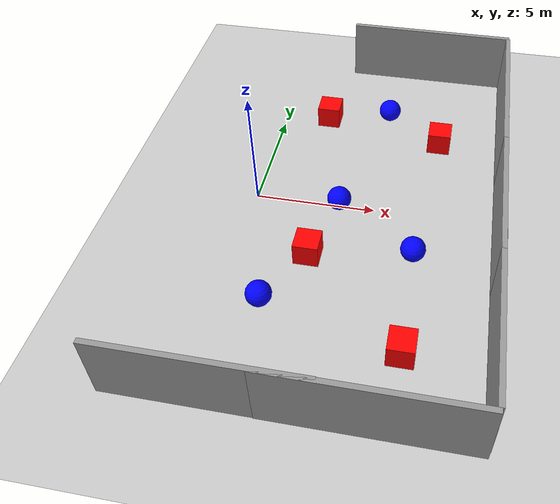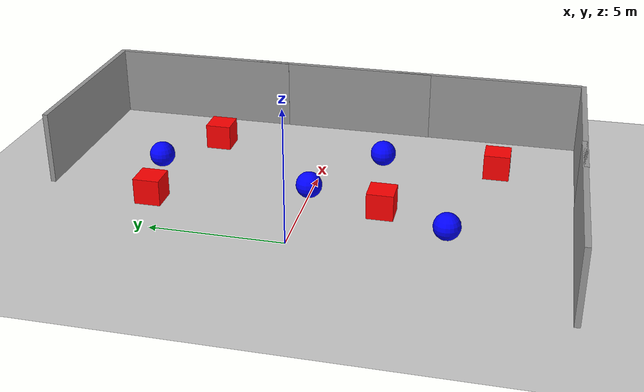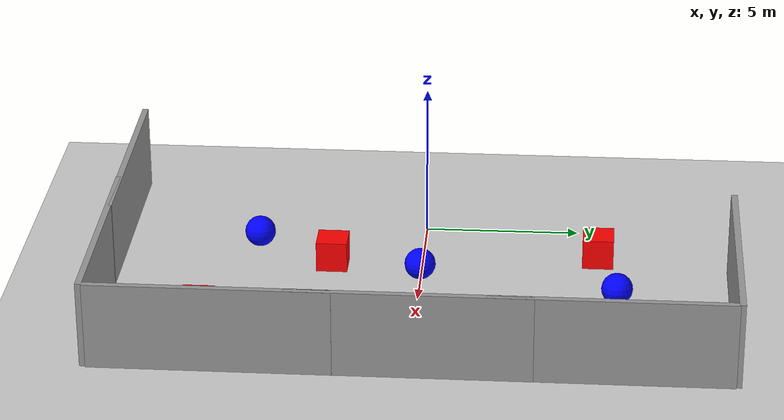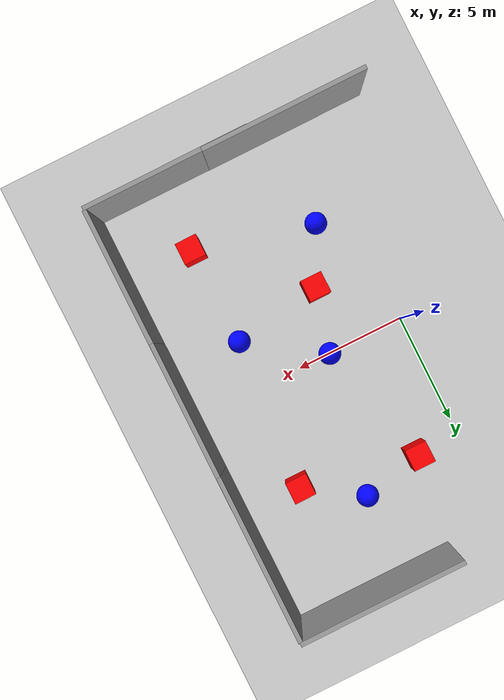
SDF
<sdf version="1.6">
 <world name="default">
  <model name="ground_plane">
   <static>1</static>
   <link name="link">
    <collision name="collision">
     <geometry><plane><normal>0 0 1</normal><size>100 100</size></plane></geometry>
     <surface>
      <contact><collide_bitmask>65535</collide_bitmask></contact>
      <friction><ode><mu>100</mu><mu2>50</mu2></ode></friction>
     </surface>
    </collision>
    <visual name="visual">
     <cast_shadows>0</cast_shadows>
     <geometry><plane><normal>0 0 1</normal><size>100 100</size></plane></geometry>
     <material>
      <script><uri>file://media/materials/scripts/gazebo.material</uri><name>Gazebo/Grey</name></script>
     </material>
    </visual>
   </link>
  </model>
  <model name="grey_wall">
   <static>1</static>
   <link name="link">
    <pose>0 0 1.4 0 -0 0</pose>
    <collision name="collision"><geometry><box><size>7.5 0.2 2.8</size></box></geometry></collision>
    <visual name="visual">
     <cast_shadows>0</cast_shadows>
     <geometry><box><size>7.5 0.2 2.8</size></box></geometry>
     <material>
      <script>
       <uri>model://grey_wall/materials/scripts</uri>
       <uri>model://grey_wall/materials/textures</uri>
       <name>vrc/grey_wall</name>
      </script>
     </material>
    </visual>
   </link>
   <pose>6.30479 9.96126 0 0 -0 0</pose>
  </model>
  <model name="grey_wall_3">
   <static>1</static>
   <link name="link">
    <pose>0 0 1.4 0 -0 0</pose>
    <collision name="collision"><geometry><box><size>7.5 0.2 2.8</size></box></geometry></collision>
    <visual name="visual">
     <cast_shadows>0</cast_shadows>
     <geometry><box><size>7.5 0.2 2.8</size></box></geometry>
     <material>
      <script>
       <uri>model://grey_wall/materials/scripts</uri>
       <uri>model://grey_wall/materials/textures</uri>
       <name>vrc/grey_wall</name>
      </script>
     </material>
    </visual>
   </link>
   <pose>0.892909 -9.82275 0 0 -0 0</pose>
  </model>
  <model name="grey_wall_4">
   <static>1</static>
   <link name="link">
    <pose>0 0 1.4 0 -0 0</pose>
    <collision name="collision"><geometry><box><size>7.5 0.2 2.8</size></box></geometry></collision>
    <visual name="visual">
     <cast_shadows>0</cast_shadows>
     <geometry><box><size>7.5 0.2 2.8</size></box></geometry>
     <material>
      <script>
       <uri>model://grey_wall/materials/scripts</uri>
       <uri>model://grey_wall/materials/textures</uri>
       <name>vrc/grey_wall</name>
      </script>
     </material>
    </visual>
   </link>
   <pose>6.28475 -9.83983 0 0 -0 0</pose>
  </model>
  <model name="grey_wall_5_90_rotated">
   <link name="link">
    <pose>0 0 1.4 0 -0 0</pose>
    <visual name="visual">
     <cast_shadows>0</cast_shadows>
     <geometry><box><size>7.5 0.2 2.8</size></box></geometry>
     <material>
      <script>
       <uri>model://grey_wall/materials/scripts</uri>
       <uri>model://grey_wall/materials/textures</uri>
       <name>vrc/grey_wall</name>
      </script>
     </material>
    </visual>
    <collision name="collision">
     <geometry><box><size>7.5 0.2 2.8</size></box></geometry>
     <surface>
      <friction>
       <ode><mu>1</mu><mu2>1</mu2><fdir1>0 0 0</fdir1><slip1>0</slip1><slip2>0</slip2></ode>
       <torsional>
        <coefficient>1</coefficient>
        <patch_radius>0</patch_radius>
        <surface_radius>0</surface_radius>
        <use_patch_radius>1</use_patch_radius>
        <ode><slip>0</slip></ode>
       </torsional>
      </friction>
      <bounce><restitution_coefficient>0</restitution_coefficient><threshold>1e+06</threshold></bounce>
      <contact>
       <collide_without_contact>0</collide_without_contact>
       <collide_without_contact_bitmask>1</collide_without_contact_bitmask>
       <collide_bitmask>1</collide_bitmask>
       <ode>
        <soft_cfm>0</soft_cfm>
        <soft_erp>0.2</soft_erp>
        <kp>1e+13</kp>
        <kd>1</kd>
        <max_vel>0.01</max_vel>
        <min_depth>0</min_depth>
       </ode>
       <bullet>
        <split_impulse>1</split_impulse>
        <split_impulse_penetration_threshold>-0.01</split_impulse_penetration_threshold>
        <soft_cfm>0</soft_cfm>
        <soft_erp>0.2</soft_erp>
        <kp>1e+13</kp>
        <kd>1</kd>
       </bullet>
      </contact>
     </surface>
    </collision>
   </link>
   <static>1</static>
   <pose>10 6.15 0 0 -0 1.57</pose>
  </model>
  <model name="grey_wall_5_90_rotated_0">
   <link name="link">
    <pose>0 0 1.4 0 -0 0</pose>
    <visual name="visual">
     <cast_shadows>0</cast_shadows>
     <geometry><box><size>7.5 0.2 2.8</size></box></geometry>
     <material>
      <script>
       <uri>model://grey_wall/materials/scripts</uri>
       <uri>model://grey_wall/materials/textures</uri>
       <name>vrc/grey_wall</name>
      </script>
     </material>
    </visual>
    <collision name="collision">
     <geometry><box><size>7.5 0.2 2.8</size></box></geometry>
     <surface>
      <friction>
       <ode><mu>1</mu><mu2>1</mu2><fdir1>0 0 0</fdir1><slip1>0</slip1><slip2>0</slip2></ode>
       <torsional>
        <coefficient>1</coefficient>
        <patch_radius>0</patch_radius>
        <surface_radius>0</surface_radius>
        <use_patch_radius>1</use_patch_radius>
        <ode><slip>0</slip></ode>
       </torsional>
      </friction>
      <bounce><restitution_coefficient>0</restitution_coefficient><threshold>1e+06</threshold></bounce>
      <contact>
       <collide_without_contact>0</collide_without_contact>
       <collide_without_contact_bitmask>1</collide_without_contact_bitmask>
       <collide_bitmask>1</collide_bitmask>
       <ode>
        <soft_cfm>0</soft_cfm>
        <soft_erp>0.2</soft_erp>
        <kp>1e+13</kp>
        <kd>1</kd>
        <max_vel>0.01</max_vel>
        <min_depth>0</min_depth>
       </ode>
       <bullet>
        <split_impulse>1</split_impulse>
        <split_impulse_penetration_threshold>-0.01</split_impulse_penetration_threshold>
        <soft_cfm>0</soft_cfm>
        <soft_erp>0.2</soft_erp>
        <kp>1e+13</kp>
        <kd>1</kd>
       </bullet>
      </contact>
     </surface>
    </collision>
   </link>
   <static>1</static>
   <pose>10 0.069107 0 0 -0 1.57</pose>
  </model>
  <model name="grey_wall_5_90_rotated_1">
   <link name="link">
    <pose>0 0 1.4 0 -0 0</pose>
    <visual name="visual">
     <cast_shadows>0</cast_shadows>
     <geometry><box><size>7.5 0.2 2.8</size></box></geometry>
     <material>
      <script>
       <uri>model://grey_wall/materials/scripts</uri>
       <uri>model://grey_wall/materials/textures</uri>
       <name>vrc/grey_wall</name>
      </script>
     </material>
    </visual>
    <collision name="collision">
     <geometry><box><size>7.5 0.2 2.8</size></box></geometry>
     <surface>
      <friction>
       <ode><mu>1</mu><mu2>1</mu2><fdir1>0 0 0</fdir1><slip1>0</slip1><slip2>0</slip2></ode>
       <torsional>
        <coefficient>1</coefficient>
        <patch_radius>0</patch_radius>
        <surface_radius>0</surface_radius>
        <use_patch_radius>1</use_patch_radius>
        <ode><slip>0</slip></ode>
       </torsional>
      </friction>
      <bounce><restitution_coefficient>0</restitution_coefficient><threshold>1e+06</threshold></bounce>
      <contact>
       <collide_without_contact>0</collide_without_contact>
       <collide_without_contact_bitmask>1</collide_without_contact_bitmask>
       <collide_bitmask>1</collide_bitmask>
       <ode>
        <soft_cfm>0</soft_cfm>
        <soft_erp>0.2</soft_erp>
        <kp>1e+13</kp>
        <kd>1</kd>
        <max_vel>0.01</max_vel>
        <min_depth>0</min_depth>
       </ode>
       <bullet>
        <split_impulse>1</split_impulse>
        <split_impulse_penetration_threshold>-0.01</split_impulse_penetration_threshold>
        <soft_cfm>0</soft_cfm>
        <soft_erp>0.2</soft_erp>
        <kp>1e+13</kp>
        <kd>1</kd>
       </bullet>
      </contact>
     </surface>
    </collision>
   </link>
   <static>1</static>
   <pose>10 -6 0 0 -0 1.57</pose>
  </model>
  <model name="unit_sphere_blue">
   <link name="link_2">
    <inertial>
     <mass>1</mass>
     <inertia><ixx>0.1</ixx><ixy>0</ixy><ixz>0</ixz><iyy>0.1</iyy><iyz>0</iyz><izz>0.1</izz></inertia>
    </inertial>
    <pose>-0.012036 0.119402 0 0 -0 0</pose>
    <visual name="visual">
     <geometry><sphere><radius>0.5</radius></sphere></geometry>
     <material>
      <lighting>1</lighting>
      <script><uri>file://media/materials/scripts/gazebo.material</uri><name>Gazebo/Grey</name></script>
      <ambient>0 0 1 0</ambient>
      <shader type="vertex"><normal_map>__default__</normal_map></shader>
      <diffuse>0.7 0.7 0.7 1</diffuse>
      <specular>0.01 0.01 0.01 1</specular>
      <emissive>0 0 0 1</emissive>
     </material>
    </visual>
    <collision name="collision">
     <geometry><sphere><radius>0.5</radius></sphere></geometry>
     <surface>
      <friction>
       <ode><mu>1</mu><mu2>1</mu2><fdir1>0 0 0</fdir1><slip1>0</slip1><slip2>0</slip2></ode>
       <torsional>
        <coefficient>1</coefficient>
        <patch_radius>0</patch_radius>
        <surface_radius>0</surface_radius>
        <use_patch_radius>1</use_patch_radius>
        <ode><slip>0</slip></ode>
       </torsional>
      </friction>
      <bounce><restitution_coefficient>0</restitution_coefficient><threshold>1e+06</threshold></bounce>
      <contact>
       <collide_without_contact>0</collide_without_contact>
       <collide_without_contact_bitmask>1</collide_without_contact_bitmask>
       <collide_bitmask>1</collide_bitmask>
       <ode>
        <soft_cfm>0</soft_cfm>
        <soft_erp>0.2</soft_erp>
        <kp>1e+13</kp>
        <kd>1</kd>
        <max_vel>0.01</max_vel>
        <min_depth>0</min_depth>
       </ode>
       <bullet>
        <split_impulse>1</split_impulse>
        <split_impulse_penetration_threshold>-0.01</split_impulse_penetration_threshold>
        <soft_cfm>0</soft_cfm>
        <soft_erp>0.2</soft_erp>
        <kp>1e+13</kp>
        <kd>1</kd>
       </bullet>
      </contact>
     </surface>
    </collision>
   </link>
   <static>0</static>
   <pose>3.54195 -0.13072 0.5 0 -0 0</pose>
  </model>
  <model name="unit_sphere_blue_0">
   <link name="link_2">
    <inertial>
     <mass>1</mass>
     <inertia><ixx>0.1</ixx><ixy>0</ixy><ixz>0</ixz><iyy>0.1</iyy><iyz>0</iyz><izz>0.1</izz></inertia>
    </inertial>
    <pose>-0.012036 0.119402 0 0 -0 0</pose>
    <visual name="visual">
     <geometry><sphere><radius>0.5</radius></sphere></geometry>
     <material>
      <lighting>1</lighting>
      <script><uri>file://media/materials/scripts/gazebo.material</uri><name>Gazebo/Grey</name></script>
      <ambient>0 0 1 0</ambient>
      <shader type="vertex"><normal_map>__default__</normal_map></shader>
      <diffuse>0.7 0.7 0.7 1</diffuse>
      <specular>0.01 0.01 0.01 1</specular>
      <emissive>0 0 0 1</emissive>
     </material>
    </visual>
    <collision name="collision">
     <geometry><sphere><radius>0.5</radius></sphere></geometry>
     <surface>
      <friction>
       <ode><mu>1</mu><mu2>1</mu2><fdir1>0 0 0</fdir1><slip1>0</slip1><slip2>0</slip2></ode>
       <torsional>
        <coefficient>1</coefficient>
        <patch_radius>0</patch_radius>
        <surface_radius>0</surface_radius>
        <use_patch_radius>1</use_patch_radius>
        <ode><slip>0</slip></ode>
       </torsional>
      </friction>
      <bounce><restitution_coefficient>0</restitution_coefficient><threshold>1e+06</threshold></bounce>
      <contact>
       <collide_without_contact>0</collide_without_contact>
       <collide_without_contact_bitmask>1</collide_without_contact_bitmask>
       <collide_bitmask>1</collide_bitmask>
       <ode>
        <soft_cfm>0</soft_cfm>
        <soft_erp>0.2</soft_erp>
        <kp>1e+13</kp>
        <kd>1</kd>
        <max_vel>0.01</max_vel>
        <min_depth>0</min_depth>
       </ode>
       <bullet>
        <split_impulse>1</split_impulse>
        <split_impulse_penetration_threshold>-0.01</split_impulse_penetration_threshold>
        <soft_cfm>0</soft_cfm>
        <soft_erp>0.2</soft_erp>
        <kp>1e+13</kp>
        <kd>1</kd>
       </bullet>
      </contact>
     </surface>
    </collision>
   </link>
   <static>0</static>
   <pose>4.85635 6.1928 0.5 0 -0 0</pose>
  </model>
  <model name="unit_sphere_blue_3">
   <link name="link_2">
    <inertial>
     <mass>1</mass>
     <inertia><ixx>0.1</ixx><ixy>0</ixy><ixz>0</ixz><iyy>0.1</iyy><iyz>0</iyz><izz>0.1</izz></inertia>
    </inertial>
    <pose>-0.012036 0.119402 0 0 -0 0</pose>
    <visual name="visual">
     <geometry><sphere><radius>0.5</radius></sphere></geometry>
     <material>
      <lighting>1</lighting>
      <script><uri>file://media/materials/scripts/gazebo.material</uri><name>Gazebo/Grey</name></script>
      <ambient>0 0 1 0</ambient>
      <shader type="vertex"><normal_map>__default__</normal_map></shader>
      <diffuse>0.7 0.7 0.7 1</diffuse>
      <specular>0.01 0.01 0.01 1</specular>
      <emissive>0 0 0 1</emissive>
     </material>
    </visual>
    <collision name="collision">
     <geometry><sphere><radius>0.5</radius></sphere></geometry>
     <surface>
      <friction>
       <ode><mu>1</mu><mu2>1</mu2><fdir1>0 0 0</fdir1><slip1>0</slip1><slip2>0</slip2></ode>
       <torsional>
        <coefficient>1</coefficient>
        <patch_radius>0</patch_radius>
        <surface_radius>0</surface_radius>
        <use_patch_radius>1</use_patch_radius>
        <ode><slip>0</slip></ode>
       </torsional>
      </friction>
      <bounce><restitution_coefficient>0</restitution_coefficient><threshold>1e+06</threshold></bounce>
      <contact>
       <collide_without_contact>0</collide_without_contact>
       <collide_without_contact_bitmask>1</collide_without_contact_bitmask>
       <collide_bitmask>1</collide_bitmask>
       <ode>
        <soft_cfm>0</soft_cfm>
        <soft_erp>0.2</soft_erp>
        <kp>1e+13</kp>
        <kd>1</kd>
        <max_vel>0.01</max_vel>
        <min_depth>0</min_depth>
       </ode>
       <bullet>
        <split_impulse>1</split_impulse>
        <split_impulse_penetration_threshold>-0.01</split_impulse_penetration_threshold>
        <soft_cfm>0</soft_cfm>
        <soft_erp>0.2</soft_erp>
        <kp>1e+13</kp>
        <kd>1</kd>
       </bullet>
      </contact>
     </surface>
    </collision>
   </link>
   <static>0</static>
   <pose>1.53481 -5.52579 0.5 0 -0 0</pose>
  </model>
  <model name="unit_box_red_0">
   <link name="link">
    <inertial>
     <mass>1</mass>
     <inertia>
      <ixx>0.166667</ixx>
      <ixy>0</ixy>
      <ixz>0</ixz>
      <iyy>0.166667</iyy>
      <iyz>0</iyz>
      <izz>0.166667</izz>
     </inertia>
    </inertial>
    <visual name="visual">
     <geometry><box><size>1 1 1</size></box></geometry>
     <material>
      <script><name>Gazebo/Grey</name><uri>file://media/materials/scripts/gazebo.material</uri></script>
      <ambient>1 0 0 0</ambient>
      <shader type="vertex"><normal_map>__default__</normal_map></shader>
      <diffuse>0.7 0.7 0.7 1</diffuse>
      <specular>0.01 0.01 0.01 1</specular>
      <emissive>0 0 0 1</emissive>
     </material>
    </visual>
    <collision name="collision">
     <geometry><box><size>1 1 1</size></box></geometry>
     <surface>
      <friction>
       <ode><mu>1</mu><mu2>1</mu2><fdir1>0 0 0</fdir1><slip1>0</slip1><slip2>0</slip2></ode>
       <torsional>
        <coefficient>1</coefficient>
        <patch_radius>0</patch_radius>
        <surface_radius>0</surface_radius>
        <use_patch_radius>1</use_patch_radius>
        <ode><slip>0</slip></ode>
       </torsional>
      </friction>
      <bounce><restitution_coefficient>0</restitution_coefficient><threshold>1e+06</threshold></bounce>
      <contact>
       <collide_without_contact>0</collide_without_contact>
       <collide_without_contact_bitmask>1</collide_without_contact_bitmask>
       <collide_bitmask>1</collide_bitmask>
       <ode>
        <soft_cfm>0</soft_cfm>
        <soft_erp>0.2</soft_erp>
        <kp>1e+13</kp>
        <kd>1</kd>
        <max_vel>0.01</max_vel>
        <min_depth>0</min_depth>
       </ode>
       <bullet>
        <split_impulse>1</split_impulse>
        <split_impulse_penetration_threshold>-0.01</split_impulse_penetration_threshold>
        <soft_cfm>0</soft_cfm>
        <soft_erp>0.2</soft_erp>
        <kp>1e+13</kp>
        <kd>1</kd>
       </bullet>
      </contact>
     </surface>
    </collision>
   </link>
   <static>0</static>
   <pose>2.06121 5.68775 0.5 0 -0 0</pose>
  </model>
  <model name="unit_box_red_1">
   <link name="link">
    <inertial>
     <mass>1</mass>
     <inertia>
      <ixx>0.166667</ixx>
      <ixy>0</ixy>
      <ixz>0</ixz>
      <iyy>0.166667</iyy>
      <iyz>0</iyz>
      <izz>0.166667</izz>
     </inertia>
    </inertial>
    <visual name="visual">
     <geometry><box><size>1 1 1</size></box></geometry>
     <material>
      <script><name>Gazebo/Grey</name><uri>file://media/materials/scripts/gazebo.material</uri></script>
      <ambient>1 0 0 0</ambient>
      <shader type="vertex"><normal_map>__default__</normal_map></shader>
      <diffuse>0.7 0.7 0.7 1</diffuse>
      <specular>0.01 0.01 0.01 1</specular>
      <emissive>0 0 0 1</emissive>
     </material>
    </visual>
    <collision name="collision">
     <geometry><box><size>1 1 1</size></box></geometry>
     <surface>
      <friction>
       <ode><mu>1</mu><mu2>1</mu2><fdir1>0 0 0</fdir1><slip1>0</slip1><slip2>0</slip2></ode>
       <torsional>
        <coefficient>1</coefficient>
        <patch_radius>0</patch_radius>
        <surface_radius>0</surface_radius>
        <use_patch_radius>1</use_patch_radius>
        <ode><slip>0</slip></ode>
       </torsional>
      </friction>
      <bounce><restitution_coefficient>0</restitution_coefficient><threshold>1e+06</threshold></bounce>
      <contact>
       <collide_without_contact>0</collide_without_contact>
       <collide_without_contact_bitmask>1</collide_without_contact_bitmask>
       <collide_bitmask>1</collide_bitmask>
       <ode>
        <soft_cfm>0</soft_cfm>
        <soft_erp>0.2</soft_erp>
        <kp>1e+13</kp>
        <kd>1</kd>
        <max_vel>0.01</max_vel>
        <min_depth>0</min_depth>
       </ode>
       <bullet>
        <split_impulse>1</split_impulse>
        <split_impulse_penetration_threshold>-0.01</split_impulse_penetration_threshold>
        <soft_cfm>0</soft_cfm>
        <soft_erp>0.2</soft_erp>
        <kp>1e+13</kp>
        <kd>1</kd>
       </bullet>
      </contact>
     </surface>
    </collision>
   </link>
   <static>0</static>
   <pose>7.32098 4.6398 0.5 0 -0 0</pose>
  </model>
  <model name="unit_box_red_2">
   <link name="link">
    <inertial>
     <mass>1</mass>
     <inertia>
      <ixx>0.166667</ixx>
      <ixy>0</ixy>
      <ixz>0</ixz>
      <iyy>0.166667</iyy>
      <iyz>0</iyz>
      <izz>0.166667</izz>
     </inertia>
    </inertial>
    <visual name="visual">
     <geometry><box><size>1 1 1</size></box></geometry>
     <material>
      <script><name>Gazebo/Grey</name><uri>file://media/materials/scripts/gazebo.material</uri></script>
      <ambient>1 0 0 0</ambient>
      <shader type="vertex"><normal_map>__default__</normal_map></shader>
      <diffuse>0.7 0.7 0.7 1</diffuse>
      <specular>0.01 0.01 0.01 1</specular>
      <emissive>0 0 0 1</emissive>
     </material>
    </visual>
    <collision name="collision">
     <geometry><box><size>1 1 1</size></box></geometry>
     <surface>
      <friction>
       <ode><mu>1</mu><mu2>1</mu2><fdir1>0 0 0</fdir1><slip1>0</slip1><slip2>0</slip2></ode>
       <torsional>
        <coefficient>1</coefficient>
        <patch_radius>0</patch_radius>
        <surface_radius>0</surface_radius>
        <use_patch_radius>1</use_patch_radius>
        <ode><slip>0</slip></ode>
       </torsional>
      </friction>
      <bounce><restitution_coefficient>0</restitution_coefficient><threshold>1e+06</threshold></bounce>
      <contact>
       <collide_without_contact>0</collide_without_contact>
       <collide_without_contact_bitmask>1</collide_without_contact_bitmask>
       <collide_bitmask>1</collide_bitmask>
       <ode>
        <soft_cfm>0</soft_cfm>
        <soft_erp>0.2</soft_erp>
        <kp>1e+13</kp>
        <kd>1</kd>
        <max_vel>0.01</max_vel>
        <min_depth>0</min_depth>
       </ode>
       <bullet>
        <split_impulse>1</split_impulse>
        <split_impulse_penetration_threshold>-0.01</split_impulse_penetration_threshold>
        <soft_cfm>0</soft_cfm>
        <soft_erp>0.2</soft_erp>
        <kp>1e+13</kp>
        <kd>1</kd>
       </bullet>
      </contact>
     </surface>
    </collision>
   </link>
   <static>0</static>
   <pose>2.81381 -2.89561 0.5 0 -0 0</pose>
  </model>
  <model name="unit_box_red_4">
   <link name="link">
    <inertial>
     <mass>1</mass>
     <inertia>
      <ixx>0.166667</ixx>
      <ixy>0</ixy>
      <ixz>0</ixz>
      <iyy>0.166667</iyy>
      <iyz>0</iyz>
      <izz>0.166667</izz>
     </inertia>
    </inertial>
    <visual name="visual">
     <geometry><box><size>1 1 1</size></box></geometry>
     <material>
      <script><name>Gazebo/Grey</name><uri>file://media/materials/scripts/gazebo.material</uri></script>
      <ambient>1 0 0 0</ambient>
      <shader type="vertex"><normal_map>__default__</normal_map></shader>
      <diffuse>0.7 0.7 0.7 1</diffuse>
      <specular>0.01 0.01 0.01 1</specular>
      <emissive>0 0 0 1</emissive>
     </material>
    </visual>
    <collision name="collision">
     <geometry><box><size>1 1 1</size></box></geometry>
     <surface>
      <friction>
       <ode><mu>1</mu><mu2>1</mu2><fdir1>0 0 0</fdir1><slip1>0</slip1><slip2>0</slip2></ode>
       <torsional>
        <coefficient>1</coefficient>
        <patch_radius>0</patch_radius>
        <surface_radius>0</surface_radius>
        <use_patch_radius>1</use_patch_radius>
        <ode><slip>0</slip></ode>
       </torsional>
      </friction>
      <bounce><restitution_coefficient>0</restitution_coefficient><threshold>1e+06</threshold></bounce>
      <contact>
       <collide_without_contact>0</collide_without_contact>
       <collide_without_contact_bitmask>1</collide_without_contact_bitmask>
       <collide_bitmask>1</collide_bitmask>
       <ode>
        <soft_cfm>0</soft_cfm>
        <soft_erp>0.2</soft_erp>
        <kp>1e+13</kp>
        <kd>1</kd>
        <max_vel>0.01</max_vel>
        <min_depth>0</min_depth>
       </ode>
       <bullet>
        <split_impulse>1</split_impulse>
        <split_impulse_penetration_threshold>-0.01</split_impulse_penetration_threshold>
        <soft_cfm>0</soft_cfm>
        <soft_erp>0.2</soft_erp>
        <kp>1e+13</kp>
        <kd>1</kd>
       </bullet>
      </contact>
     </surface>
    </collision>
   </link>
   <static>0</static>
   <pose>6.94182 -6.75745 0.5 0 -0 0</pose>
  </model>
  <model name="unit_sphere_blue_4">
   <link name="link_2">
    <inertial>
     <mass>1</mass>
     <inertia><ixx>0.1</ixx><ixy>0</ixy><ixz>0</ixz><iyy>0.1</iyy><iyz>0</iyz><izz>0.1</izz></inertia>
    </inertial>
    <pose>-0.012036 0.119402 0 0 -0 0</pose>
    <visual name="visual">
     <geometry><sphere><radius>0.5</radius></sphere></geometry>
     <material>
      <lighting>1</lighting>
      <script><uri>file://media/materials/scripts/gazebo.material</uri><name>Gazebo/Grey</name></script>
      <ambient>0 0 1 0</ambient>
      <shader type="vertex"><normal_map>__default__</normal_map></shader>
      <diffuse>0.7 0.7 0.7 1</diffuse>
      <specular>0.01 0.01 0.01 1</specular>
      <emissive>0 0 0 1</emissive>
     </material>
    </visual>
    <collision name="collision">
     <geometry><sphere><radius>0.5</radius></sphere></geometry>
     <surface>
      <friction>
       <ode><mu>1</mu><mu2>1</mu2><fdir1>0 0 0</fdir1><slip1>0</slip1><slip2>0</slip2></ode>
       <torsional>
        <coefficient>1</coefficient>
        <patch_radius>0</patch_radius>
        <surface_radius>0</surface_radius>
        <use_patch_radius>1</use_patch_radius>
        <ode><slip>0</slip></ode>
       </torsional>
      </friction>
      <bounce><restitution_coefficient>0</restitution_coefficient><threshold>1e+06</threshold></bounce>
      <contact>
       <collide_without_contact>0</collide_without_contact>
       <collide_without_contact_bitmask>1</collide_without_contact_bitmask>
       <collide_bitmask>1</collide_bitmask>
       <ode>
        <soft_cfm>0</soft_cfm>
        <soft_erp>0.2</soft_erp>
        <kp>1e+13</kp>
        <kd>1</kd>
        <max_vel>0.01</max_vel>
        <min_depth>0</min_depth>
       </ode>
       <bullet>
        <split_impulse>1</split_impulse>
        <split_impulse_penetration_threshold>-0.01</split_impulse_penetration_threshold>
        <soft_cfm>0</soft_cfm>
        <soft_erp>0.2</soft_erp>
        <kp>1e+13</kp>
        <kd>1</kd>
       </bullet>
      </contact>
     </surface>
    </collision>
   </link>
   <static>0</static>
   <pose>6.86571 -2.38327 0.5 0 -0 0</pose>
  </model>
 </world>
</sdf>
